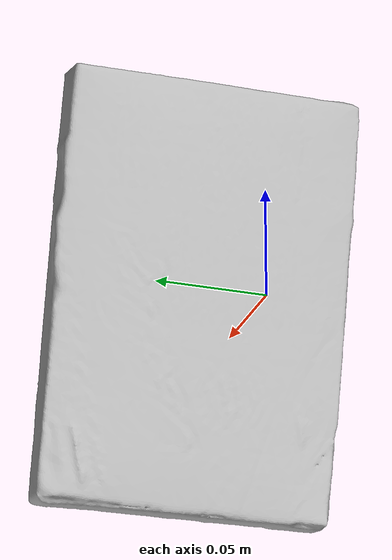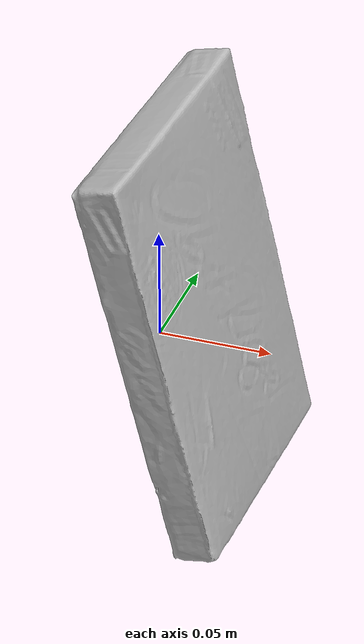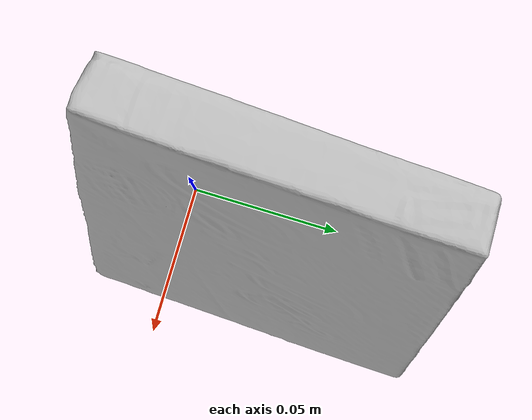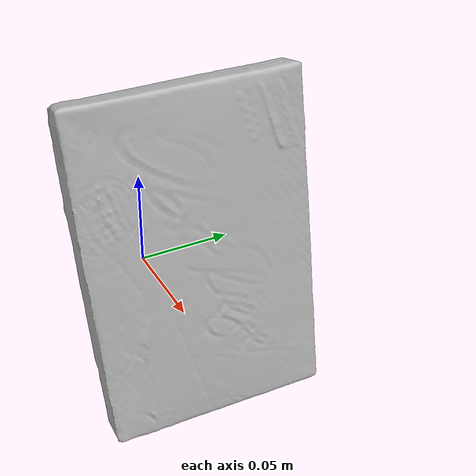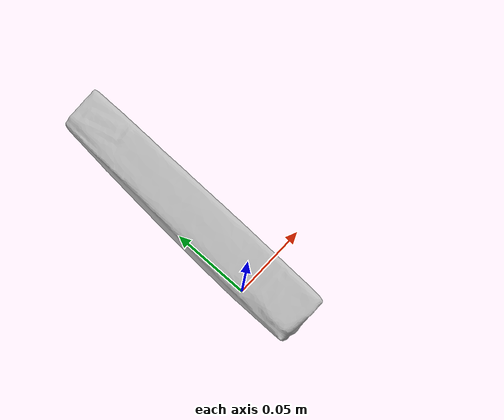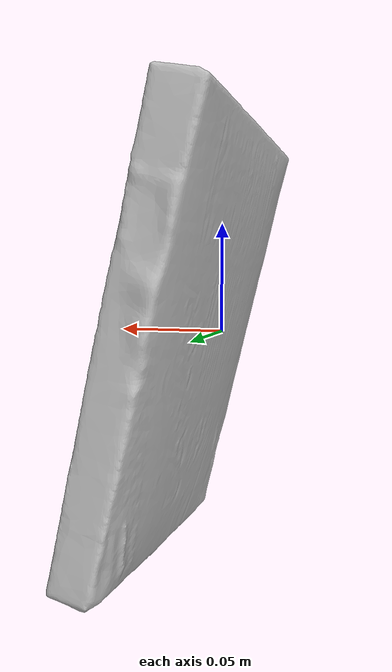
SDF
<?xml version='1.0'?>
<sdf version="1.4">
  <model name="FruitBars">
    <static>false</static>
    <link name="link">
      <inertial>
        <pose>0.008823058980913689 0.02826688023065981 -0.0014926000865294823 3.118689217539566 0.22756307745894033 3.086695064084916</pose>
        <mass>0.05651901053836824</mass>
        <inertia>
          <ixx>0.00023699586019263773</ixx>
          <ixy>1.4381593881929674e-20</ixy>
          <ixz>1.3025624298594168e-20</ixz>
          <iyy>0.00016493996845881392</iyy>
          <iyz>6.836957490650888e-20</iyz>
          <izz>7.72006653378442e-05</izz>
        </inertia>
      </inertial>
      <collision name="collision">
        <geometry>
          <mesh>
            <!-- Use a downsampled mesh for collisions -->
            <uri>model:///FruitBars/FruitBars_250_collision.obj</uri>
	        </mesh>
        </geometry>
        <surface>
      </surface>
      </collision>
      <visual name="visual">
        <geometry>
          <mesh>
            <uri>model:///FruitBars/FruitBars_25k_tex.obj</uri>
	        </mesh>
        </geometry>
        <material>
          <script>
            <uri>model:///FruitBars/FruitBars.material</uri>
            <name>FruitBars</name>
          </script>
        </material>
      </visual>
    </link>
  </model>
</sdf>
